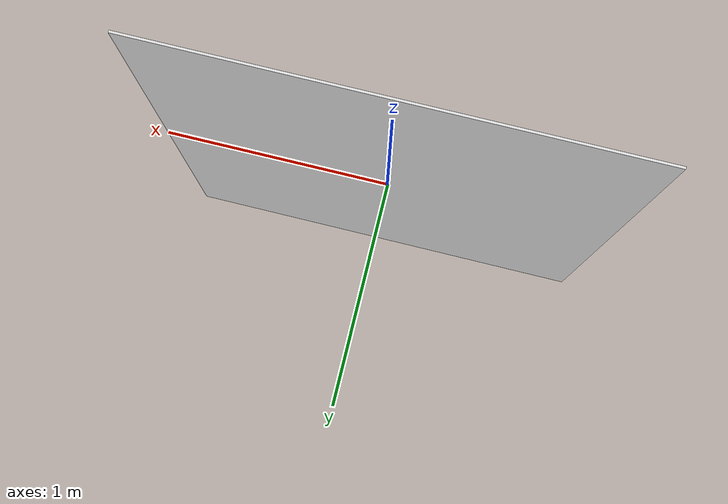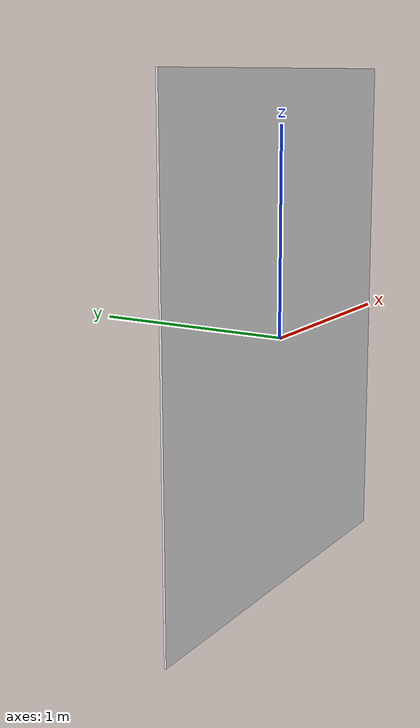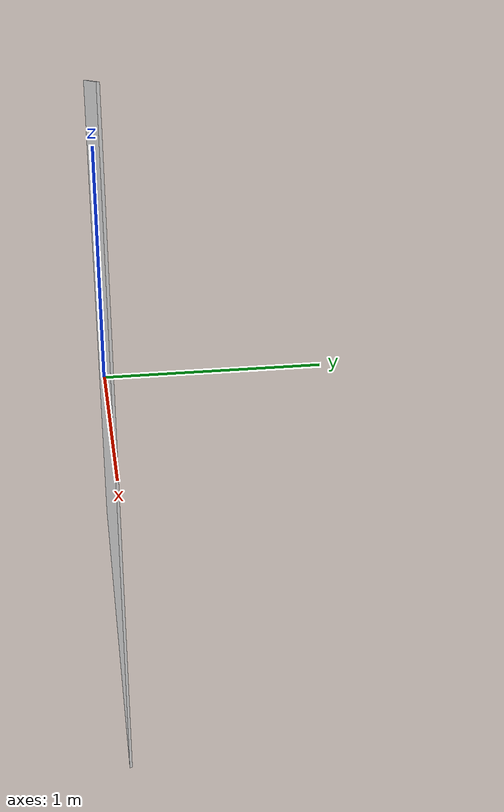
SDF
<?xml version='1.0'?>
<sdf version="1.4">
<model name="wall_iros">
    <static>true</static>
    <link name="link">
      <collision name="collision_wall">
        <geometry>
          <box>
            <size>2.0 0.01 2.5</size>
          </box>
        </geometry>
      </collision>
      <visual name="visual_wall">
        <geometry>
          <box>
            <size>2.0 0.01 2.5</size>
          </box>
        </geometry>
        <material>
          <script>
            <uri>file://media/materials/scripts/gazebo.material</uri>
            <name>Gazebo/White</name>
          </script>
        </material>
      </visual>
    </link>
  </model>
</sdf>
